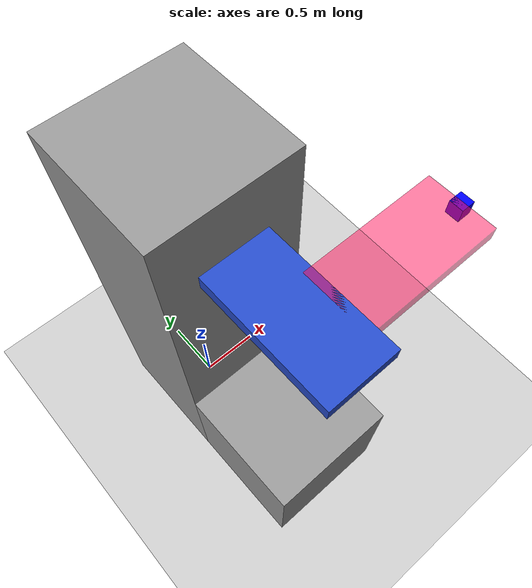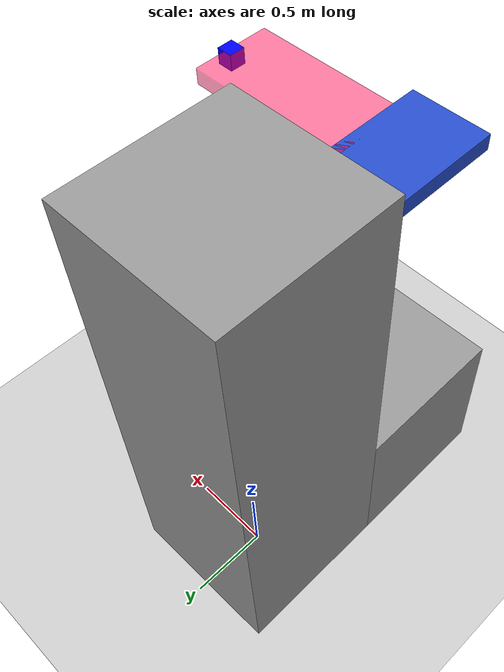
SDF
<sdf version="1.5">
 <world name="default">
  <light name="sun" type="directional">
   <pose>0 0 10 0 -0 0</pose>
   <diffuse>0.8 0.8 0.8 1</diffuse>
   <specular>0.1 0.1 0.1 1</specular>
   <attenuation>
    <range>1000</range>
    <constant>0.9</constant>
    <linear>0.01</linear>
    <quadratic>0.001</quadratic>
   </attenuation>
   <direction>-0.5 0.5 -1</direction>
  </light>
  <model name="ground_plane">
   <static>1</static>
   <link name="link">
    <collision name="collision">
     <geometry><plane><normal>0 0 1</normal><size>100 100</size></plane></geometry>
     <surface><friction><ode><mu>100</mu><mu2>50</mu2></ode></friction></surface>
    </collision>
    <visual name="visual">
     <cast_shadows>0</cast_shadows>
     <geometry><plane><normal>0 0 1</normal><size>100 100</size></plane></geometry>
     <material>
      <script><uri>file://media/materials/scripts/gazebo.material</uri><name>Gazebo/Grey</name></script>
     </material>
    </visual>
   </link>
  </model>
  <gravity>0 0 -9.8</gravity>
  <magnetic_field>6e-06 2.3e-05 -4.2e-05</magnetic_field>
  <atmosphere type="adiabatic"/>
  <physics name="default_physics" default="0" type="ode">
   <max_step_size>0.001</max_step_size>
   <real_time_factor>1</real_time_factor>
   <real_time_update_rate>1000</real_time_update_rate>
  </physics>
  <scene><ambient>0.4 0.4 0.4 1</ambient><background>0.7 0.7 0.7 1</background><shadows>1</shadows></scene>
  <audio><device>default</device></audio>
  <spherical_coordinates>
   <surface_model>EARTH_WGS84</surface_model>
   <latitude_deg>0</latitude_deg>
   <longitude_deg>0</longitude_deg>
   <elevation>0</elevation>
   <heading_deg>0</heading_deg>
  </spherical_coordinates>
  <model name="gimbel">
   <link name="link_1">
    <inertial>
     <mass>2.42736</mass>
     <inertia><ixx>1.39413</ixx><ixy>0</ixy><ixz>0</ixz><iyy>1.39413</iyy><iyz>0</iyz><izz>0.40456</izz></inertia>
    </inertial>
    <pose>-0.1875 0.09375 1.25 0 -0 0</pose>
    <visual name="visual">
     <geometry><box><size>1 1 3</size></box></geometry>
     <material>
      <lighting>1</lighting>
      <script><uri>file://media/materials/scripts/gazebo.material</uri><name>Gazebo/Grey</name></script>
      <ambient>0.3 0.3 0.3 1</ambient>
      <diffuse>0.7 0.7 0.7 1</diffuse>
      <specular>0.01 0.01 0.01 1</specular>
      <emissive>0 0 0 1</emissive>
      <shader type="vertex"><normal_map>__default__</normal_map></shader>
     </material>
    </visual>
    <collision name="collision">
     <geometry><box><size>1 1 3</size></box></geometry>
     <surface>
      <friction>
       <ode><mu>1</mu><mu2>1</mu2><fdir1>0 0 0</fdir1><slip1>0</slip1><slip2>0</slip2></ode>
       <torsional>
        <coefficient>1</coefficient>
        <patch_radius>0</patch_radius>
        <surface_radius>0</surface_radius>
        <use_patch_radius>1</use_patch_radius>
        <ode><slip>0</slip></ode>
       </torsional>
      </friction>
      <bounce><restitution_coefficient>0</restitution_coefficient><threshold>1e+06</threshold></bounce>
      <contact>
       <collide_without_contact>0</collide_without_contact>
       <collide_without_contact_bitmask>1</collide_without_contact_bitmask>
       <collide_bitmask>1</collide_bitmask>
       <ode>
        <soft_cfm>0</soft_cfm>
        <soft_erp>0.2</soft_erp>
        <kp>1e+13</kp>
        <kd>1</kd>
        <max_vel>0.01</max_vel>
        <min_depth>0</min_depth>
       </ode>
       <bullet>
        <split_impulse>1</split_impulse>
        <split_impulse_penetration_threshold>-0.01</split_impulse_penetration_threshold>
        <soft_cfm>0</soft_cfm>
        <soft_erp>0.2</soft_erp>
        <kp>1e+13</kp>
        <kd>1</kd>
       </bullet>
      </contact>
     </surface>
    </collision>
   </link>
   <link name="link_0">
    <inertial>
     <mass>10</mass>
     <inertia>
      <ixx>0.00166667</ixx>
      <ixy>0</ixy>
      <ixz>0</ixz>
      <iyy>0.00166667</iyy>
      <iyz>0</iyz>
      <izz>0.00166667</izz>
     </inertia>
    </inertial>
    <pose>1 -1 2.25 0 0 -0.003075</pose>
    <visual name="visual">
     <geometry><box><size>0.1 0.1 0.1</size></box></geometry>
     <material>
      <lighting>1</lighting>
      <script><uri>file://media/materials/scripts/gazebo.material</uri><name>Gazebo/Grey</name></script>
      <ambient>0 0 1 1</ambient>
      <diffuse>0 0 1 1</diffuse>
      <specular>0 0 1 1</specular>
      <emissive>0 0 0 1</emissive>
      <shader type="vertex"><normal_map>__default__</normal_map></shader>
     </material>
    </visual>
   </link>
   <link name="link_2">
    <inertial>
     <mass>2000</mass>
     <inertia><ixx>333.333</ixx><ixy>0</ixy><ixz>0</ixz><iyy>333.333</iyy><iyz>0</iyz><izz>333.333</izz></inertia>
    </inertial>
    <pose>-0.1875 -0.90625 0.25 0 -0 0</pose>
    <visual name="visual">
     <geometry><box><size>1 1 1</size></box></geometry>
     <material>
      <lighting>1</lighting>
      <script><uri>file://media/materials/scripts/gazebo.material</uri><name>Gazebo/Grey</name></script>
      <ambient>0.3 0.3 0.3 1</ambient>
      <diffuse>0.7 0.7 0.7 1</diffuse>
      <specular>0.01 0.01 0.01 1</specular>
      <emissive>0 0 0 1</emissive>
      <shader type="vertex"><normal_map>__default__</normal_map></shader>
     </material>
    </visual>
    <collision name="collision">
     <geometry><box><size>1 1 1</size></box></geometry>
     <surface>
      <friction>
       <ode><mu>1</mu><mu2>1</mu2><fdir1>0 0 0</fdir1><slip1>0</slip1><slip2>0</slip2></ode>
       <torsional>
        <coefficient>1</coefficient>
        <patch_radius>0</patch_radius>
        <surface_radius>0</surface_radius>
        <use_patch_radius>1</use_patch_radius>
        <ode><slip>0</slip></ode>
       </torsional>
      </friction>
      <bounce><restitution_coefficient>0</restitution_coefficient><threshold>1e+06</threshold></bounce>
      <contact>
       <collide_without_contact>0</collide_without_contact>
       <collide_without_contact_bitmask>1</collide_without_contact_bitmask>
       <collide_bitmask>1</collide_bitmask>
       <ode>
        <soft_cfm>0</soft_cfm>
        <soft_erp>0.2</soft_erp>
        <kp>1e+13</kp>
        <kd>1</kd>
        <max_vel>0.01</max_vel>
        <min_depth>0</min_depth>
       </ode>
       <bullet>
        <split_impulse>1</split_impulse>
        <split_impulse_penetration_threshold>-0.01</split_impulse_penetration_threshold>
        <soft_cfm>0</soft_cfm>
        <soft_erp>0.2</soft_erp>
        <kp>1e+13</kp>
        <kd>1</kd>
       </bullet>
      </contact>
     </surface>
    </collision>
   </link>
   <link name="link_3">
    <inertial>
     <mass>1</mass>
     <inertia>
      <ixx>0.166667</ixx>
      <ixy>0</ixy>
      <ixz>0</ixz>
      <iyy>0.166667</iyy>
      <iyz>0</iyz>
      <izz>0.166667</izz>
     </inertia>
    </inertial>
    <pose>-0.1875 -0.90625 2.25 0 -0 0</pose>
    <visual name="visual">
     <geometry><box><size>0.5 1 0.1</size></box></geometry>
     <material>
      <lighting>1</lighting>
      <script><uri>file://media/materials/scripts/gazebo.material</uri><name>Gazebo/Blue</name></script>
      <ambient>0 1 0.3 1</ambient>
      <diffuse>0.7 0.7 0.7 1</diffuse>
      <specular>0.01 0.01 0.01 1</specular>
      <emissive>0 0 0 1</emissive>
      <shader type="vertex"><normal_map>__default__</normal_map></shader>
     </material>
    </visual>
    <collision name="collision">
     <geometry><box><size>0.5 1 0.1</size></box></geometry>
     <surface>
      <friction>
       <ode><mu>1</mu><mu2>1</mu2><fdir1>0 0 0</fdir1><slip1>0</slip1><slip2>0</slip2></ode>
       <torsional>
        <coefficient>1</coefficient>
        <patch_radius>0</patch_radius>
        <surface_radius>0</surface_radius>
        <use_patch_radius>1</use_patch_radius>
        <ode><slip>0</slip></ode>
       </torsional>
      </friction>
      <bounce><restitution_coefficient>0</restitution_coefficient><threshold>1e+06</threshold></bounce>
      <contact>
       <collide_without_contact>0</collide_without_contact>
       <collide_without_contact_bitmask>1</collide_without_contact_bitmask>
       <collide_bitmask>1</collide_bitmask>
       <ode>
        <soft_cfm>0</soft_cfm>
        <soft_erp>0.2</soft_erp>
        <kp>1e+13</kp>
        <kd>1</kd>
        <max_vel>0.01</max_vel>
        <min_depth>0</min_depth>
       </ode>
       <bullet>
        <split_impulse>1</split_impulse>
        <split_impulse_penetration_threshold>-0.01</split_impulse_penetration_threshold>
        <soft_cfm>0</soft_cfm>
        <soft_erp>0.2</soft_erp>
        <kp>1e+13</kp>
        <kd>1</kd>
       </bullet>
      </contact>
     </surface>
    </collision>
   </link>
   <link name="link_4">
    <inertial>
     <mass>0.1</mass>
     <inertia>
      <ixx>0.00216667</ixx>
      <ixy>0</ixy>
      <ixz>0</ixz>
      <iyy>0.00841667</iyy>
      <iyz>0</iyz>
      <izz>0.0104167</izz>
     </inertia>
    </inertial>
    <pose>0.5 -1 2.25 0 -0 0</pose>
    <visual name="visual">
     <geometry><box><size>1 0.5 0.1</size></box></geometry>
     <material>
      <lighting>1</lighting>
      <script><uri>file://media/materials/scripts/gazebo.material</uri><name>Gazebo/Grey</name></script>
      <ambient>1 0 0.3 0.5</ambient>
      <diffuse>0.7 0.7 0.7 0.5</diffuse>
      <specular>0.01 0.01 0.01 0.5</specular>
      <emissive>0 0 0 0.5</emissive>
      <shader type="vertex"><normal_map>__default__</normal_map></shader>
     </material>
    </visual>
    <collision name="collision">
     <geometry><box><size>1 0.5 0.1</size></box></geometry>
     <surface>
      <friction>
       <ode><mu>1</mu><mu2>1</mu2><fdir1>0 0 0</fdir1><slip1>0</slip1><slip2>0</slip2></ode>
       <torsional>
        <coefficient>1</coefficient>
        <patch_radius>0</patch_radius>
        <surface_radius>0</surface_radius>
        <use_patch_radius>1</use_patch_radius>
        <ode><slip>0</slip></ode>
       </torsional>
      </friction>
      <bounce><restitution_coefficient>0</restitution_coefficient><threshold>1e+06</threshold></bounce>
      <contact>
       <collide_without_contact>0</collide_without_contact>
       <collide_without_contact_bitmask>1</collide_without_contact_bitmask>
       <collide_bitmask>1</collide_bitmask>
       <ode>
        <soft_cfm>0</soft_cfm>
        <soft_erp>0.2</soft_erp>
        <kp>1e+13</kp>
        <kd>1</kd>
        <max_vel>0.01</max_vel>
        <min_depth>0</min_depth>
       </ode>
       <bullet>
        <split_impulse>1</split_impulse>
        <split_impulse_penetration_threshold>-0.01</split_impulse_penetration_threshold>
        <soft_cfm>0</soft_cfm>
        <soft_erp>0.2</soft_erp>
        <kp>1e+13</kp>
        <kd>1</kd>
       </bullet>
      </contact>
     </surface>
    </collision>
   </link>
   <joint name="link_0_JOINT_1" type="ball">
    <parent>link_4</parent>
    <child>link_0</child>
    <physics>
     <ode><limit><cfm>0</cfm><erp>0.2</erp></limit><suspension><cfm>0</cfm><erp>0.2</erp></suspension></ode>
    </physics>
   </joint>
   <joint name="link_1_JOINT_0_0" type="revolute">
    <parent>link_1</parent>
    <child>link_3</child>
    <axis>
     <xyz>0 1 0</xyz>
     <use_parent_model_frame>0</use_parent_model_frame>
     <limit>
      <lower>-1.79769e+308</lower>
      <upper>1.79769e+308</upper>
      <effort>-1</effort>
      <velocity>-1</velocity>
     </limit>
     <dynamics>
      <spring_reference>0</spring_reference>
      <spring_stiffness>0</spring_stiffness>
      <damping>10</damping>
      <friction>10</friction>
     </dynamics>
    </axis>
    <physics>
     <ode><limit><cfm>0</cfm><erp>0.2</erp></limit><suspension><cfm>0</cfm><erp>0.2</erp></suspension></ode>
    </physics>
   </joint>
   <joint name="link_1_JOINT_0" type="fixed">
    <parent>link_1</parent>
    <child>link_2</child>
    <physics>
     <ode><limit><cfm>0</cfm><erp>0.2</erp></limit><suspension><cfm>0</cfm><erp>0.2</erp></suspension></ode>
    </physics>
   </joint>
   <joint name="link_4_JOINT_2" type="revolute">
    <parent>link_3</parent>
    <child>link_4</child>
    <axis>
     <xyz>1 0 0</xyz>
     <use_parent_model_frame>0</use_parent_model_frame>
     <limit>
      <lower>-1.79769e+308</lower>
      <upper>1.79769e+308</upper>
      <effort>-1</effort>
      <velocity>-1</velocity>
     </limit>
     <dynamics>
      <spring_reference>0</spring_reference>
      <spring_stiffness>0</spring_stiffness>
      <damping>1</damping>
      <friction>0</friction>
     </dynamics>
    </axis>
    <physics>
     <ode><limit><cfm>0</cfm><erp>0.2</erp></limit><suspension><cfm>0</cfm><erp>0.2</erp></suspension></ode>
    </physics>
   </joint>
   <static>0</static>
   <pose>0.219445 -0.150977 0.250001 -1e-06 -1e-06 0.009918</pose>
  </model>
 </world>
</sdf>
